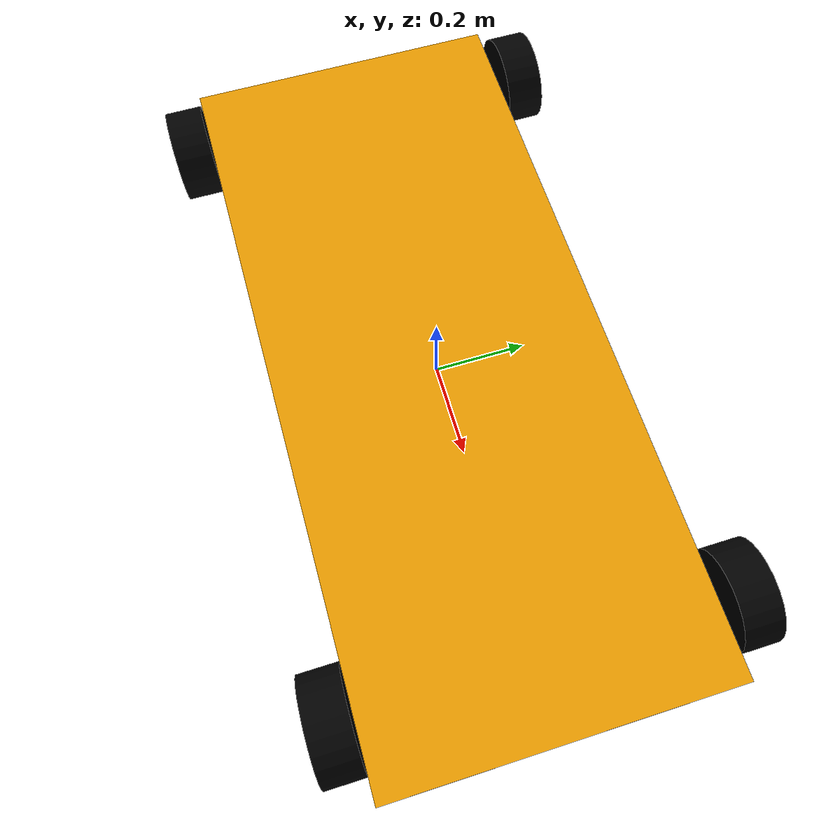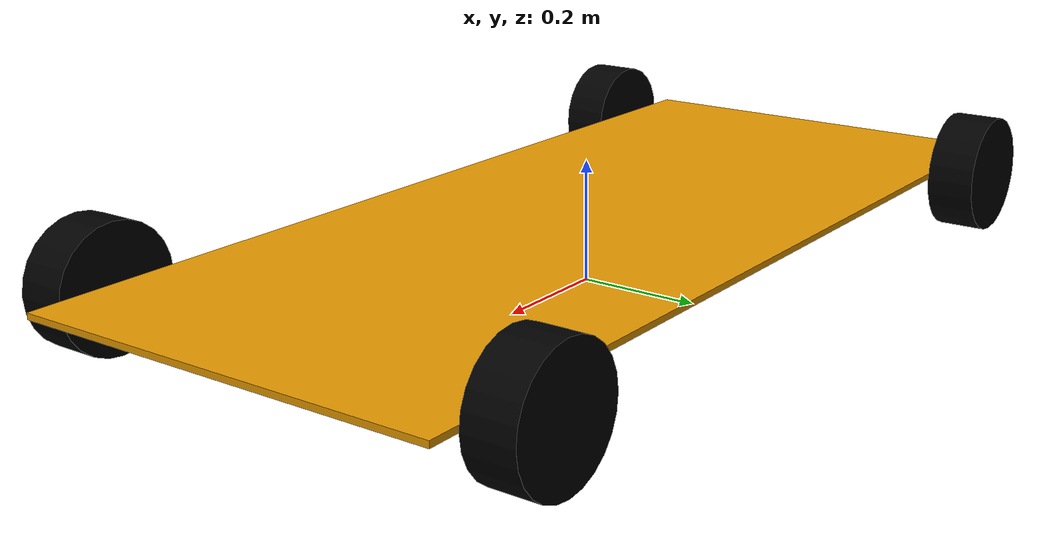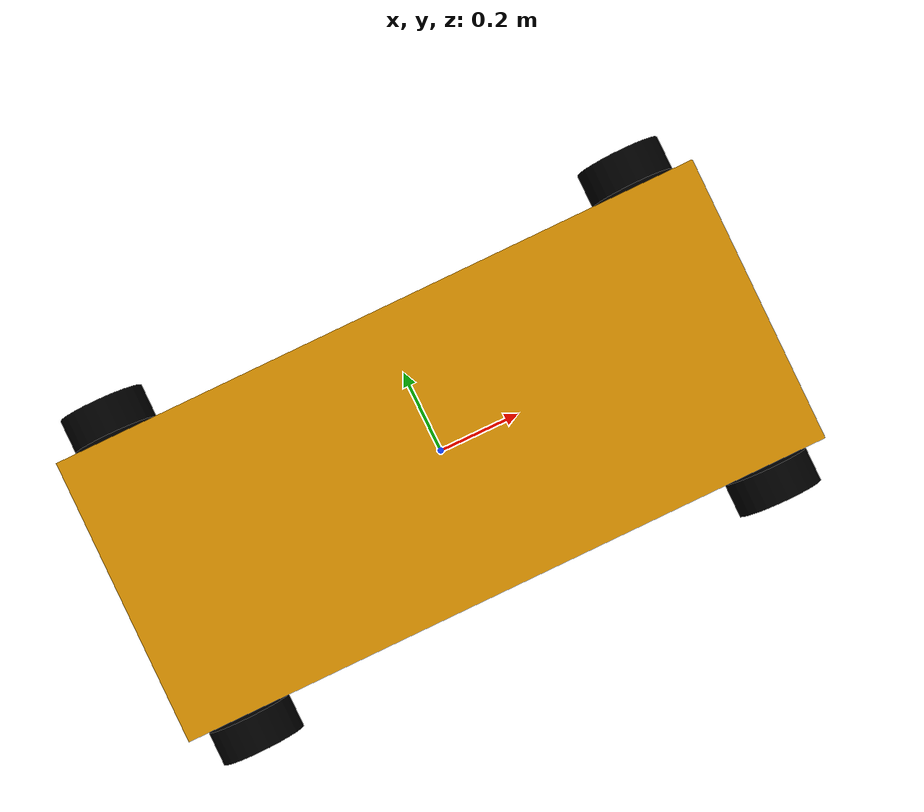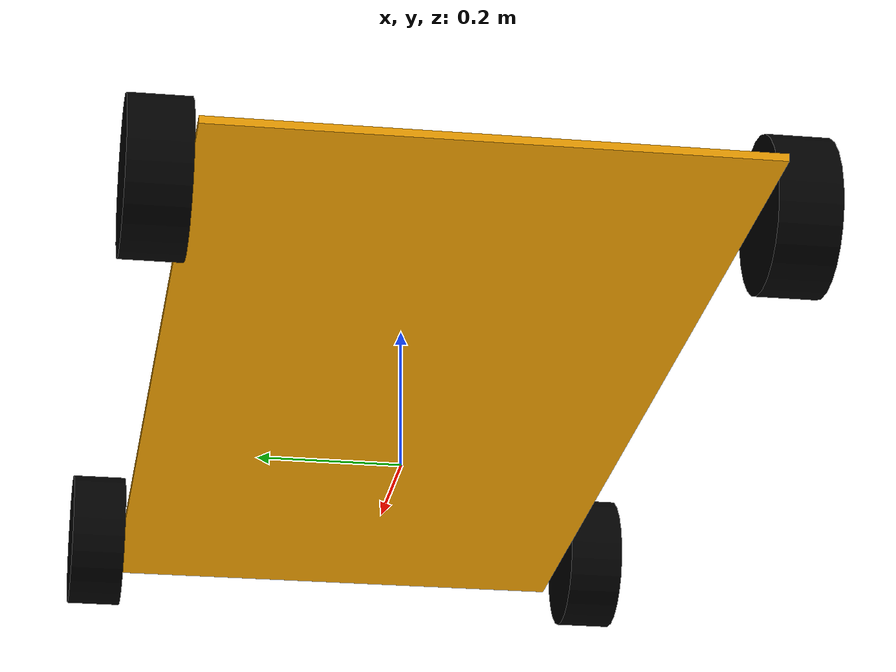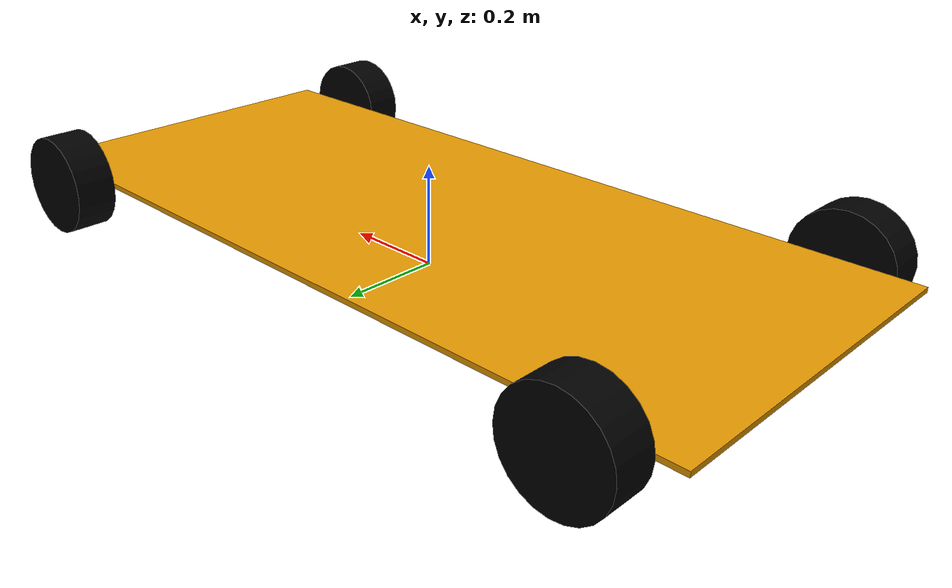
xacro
<!-- 底盘 -->
<robot xmlns:xacro="http://www.ros.org/wiki/xacro">
    <xacro:property name="PI" value="3.1415927"/>
    <!-- 底座 -->
    <xacro:property name="car_length" value="1.6"/>
    <xacro:property name="car_width" value="0.7"/>
    <xacro:property name="car_height" value="0.01"/>
    <xacro:property name="car_mass" value="2"/>
    <!-- 轮胎 -->
    <xacro:property name="wheel_radius" value="0.1"/>
    <xacro:property name="wheel_length" value="0.08"/>
    <xacro:property name="wheel_mass" value="1.5"/>
    <!-- 离地间距 -->
    <xacro:property name="distance" value="0.1"/>
    <!-- 轮胎关节偏移量 -->
    <xacro:property name="wheel_joint_x" value="0.65"/>
    <xacro:property name="wheel_joint_y" value="${car_width/2 + wheel_length/2}"/>
    <xacro:property name="wheel_joint_z" value="${-(car_height/2 + distance - wheel_radius)}"/>

    <!-- 1.抽取颜色 -->
    <material name="yellow">
        <color rgba="0.9 0.6 0.0 1.0"/>
    </material>
    <material name="black">
        <color rgba="0.0 0.0 0.0 1.0"/>
    </material>
    <!-- 2.设置base_footprint -->
    <link name="base_footprint">
        <visual>
            <geometry>
                <sphere radius="0.001"/>
            </geometry>
        </visual>
    </link>
    <!-- 3.设置base_link -->
    <link name="base_link">
        <visual>
            <geometry>
                <box size="${car_length} ${car_width} ${car_height}"/>
            </geometry>
            <material name="yellow"/>
        </visual>
        <!-- 碰撞信息 gazebo使用 -->
        <collision>
            <geometry>
                <box size="${car_length} ${car_width} ${car_height}"/>
            </geometry>
        </collision>
        <!-- 调用惯性矩阵 -->
        <xacro:box_inertia m="${car_mass}" w="${car_width}" h="${car_height}" d="${car_height}"/>
    </link>
    <gazebo reference="base_link">
        <material name="yellow"/>
    </gazebo>
    <!-- 4.joint关联俩者 -->
    <joint name="base_linkbase_footprint" type="fixed">
        <parent link="base_footprint"/>
        <child link="base_link"/>
        <!-- z偏移 = 车体高度/2 + 离地间距 -->
        <origin xyz="0.0 0.0 ${car_height/2 +distance}"/>
    </joint>
    <!-- 5.定义车轮宏 -->
    <xacro:macro name="wheel_func" params="link_name front_flag left_flag">
        <link name="${link_name}">
            <visual>
                <geometry>
                    <cylinder radius="${wheel_radius}" length="${wheel_length}"/>
                </geometry>
                <material name="black"/>
                <origin rpy="${PI/2} 0.0 0.0"/>
            </visual>
            <collision>
                <geometry>

                    <cylinder radius="${wheel_radius}" length="${wheel_length}"/>
                </geometry>
                <material name="black"/>
                <origin rpy="${PI/2} 0.0 0.0"/>
            </collision>
            <xacro:cylinder_inertia m="${wheel_mass}" r="${wheel_radius}" h="${wheel_length}"/>
        </link>
        <gazebo reference="${link_name}">
            <collision>
                <surface>
                    <friction>
                        <ode>
                            <mu>1.0</mu>
                            <mu2>1.0</mu2>
                            <slip1>0.035</slip1>
                            <slip2>0.0</slip2>
                            <fdir1>0 0 1</fdir1>
                        </ode>
                    </friction>
                </surface>
            </collision>
            <material name="black"/>
        </gazebo>
        <joint name="${link_name}base_link" type="continuous">
            <parent link="base_link"/>
            <child link="${link_name}"/>
            <origin xyz="${wheel_joint_x * front_flag} ${wheel_joint_y * left_flag} ${wheel_joint_z}"/>
            <axis xyz="0.0 1.0 0.0"/>
        </joint>
    </xacro:macro>
    <!-- 6.调用宏生成四个车轮 -->
    <xacro:wheel_func link_name="front_left" front_flag="1" left_flag="1"/>
    <xacro:wheel_func link_name="front_right" front_flag="1" left_flag="-1"/>
    <xacro:wheel_func link_name="back_left" front_flag="-1" left_flag="1"/>
    <xacro:wheel_func link_name="back_right" front_flag="-1" left_flag="-1"/>
</robot>
